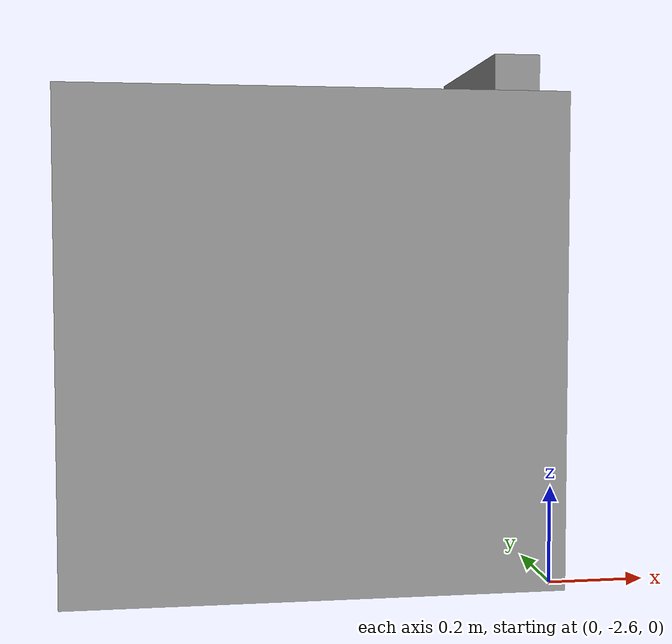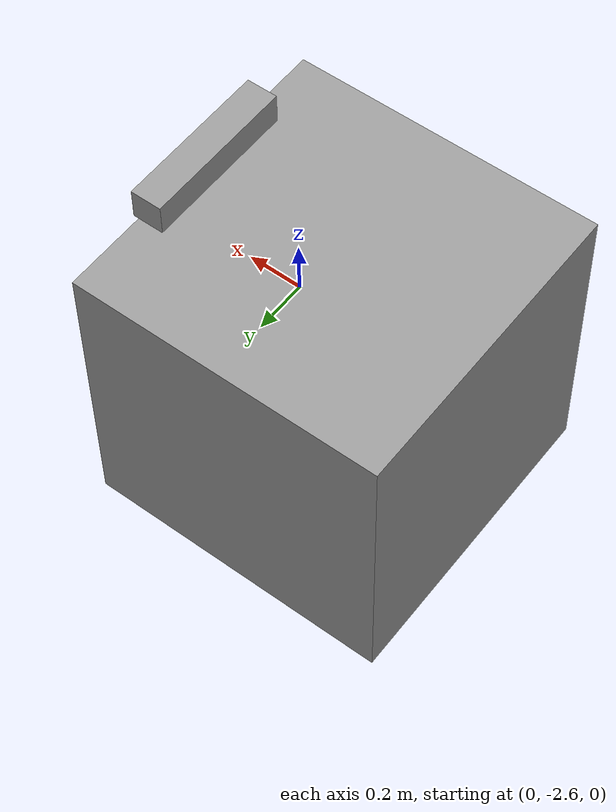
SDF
<?xml version='1.0'?>
<sdf version='1.7'>
  <model name='camera'>
    <link name='link_0'>
      <inertial>
        <mass>1</mass>
        <inertia>
          <ixx>0.166667</ixx>
          <ixy>0</ixy>
          <ixz>0</ixz>
          <iyy>0.166667</iyy>
          <iyz>0</iyz>
          <izz>0.166667</izz>
        </inertia>
      </inertial>
      <pose>-0.486136 -2.15842 0.5 0 -0 0</pose>
      <visual name='visual'>
        <pose>0 0 0 0 -0 0</pose>
        <geometry>
          <box>
            <size>1 1 1</size>
          </box>
        </geometry>
        <material>
          <lighting>1</lighting>
          <script>
            <uri>file://media/materials/scripts/gazebo.material</uri>
            <name>Gazebo/Grey</name>
          </script>
          <shader type='pixel'/>
          <emissive>0 0 0 1</emissive>
        </material>
        <transparency>0</transparency>
        <cast_shadows>1</cast_shadows>
      </visual>
      <collision name='collision'>
        <laser_retro>0</laser_retro>
        <max_contacts>10</max_contacts>
        <pose>0 0 0 0 -0 0</pose>
        <geometry>
          <box>
            <size>1 1 1</size>
          </box>
        </geometry>
        <surface>
          <friction>
            <ode>
              <mu>1</mu>
              <mu2>1</mu2>
              <fdir1>0 0 0</fdir1>
              <slip1>0</slip1>
              <slip2>0</slip2>
            </ode>
            <torsional>
              <coefficient>1</coefficient>
              <patch_radius>0</patch_radius>
              <surface_radius>0</surface_radius>
              <use_patch_radius>1</use_patch_radius>
              <ode>
                <slip>0</slip>
              </ode>
            </torsional>
          </friction>
          <bounce>
            <restitution_coefficient>0</restitution_coefficient>
            <threshold>1e+06</threshold>
          </bounce>
          <contact>
            <collide_without_contact>0</collide_without_contact>
            <collide_without_contact_bitmask>1</collide_without_contact_bitmask>
            <collide_bitmask>1</collide_bitmask>
            <ode>
              <soft_cfm>0</soft_cfm>
              <soft_erp>0.2</soft_erp>
              <kp>1e+13</kp>
              <kd>1</kd>
              <max_vel>0.01</max_vel>
              <min_depth>0</min_depth>
            </ode>
            <bullet>
              <split_impulse>1</split_impulse>
              <split_impulse_penetration_threshold>-0.01</split_impulse_penetration_threshold>
              <soft_cfm>0</soft_cfm>
              <soft_erp>0.2</soft_erp>
              <kp>1e+13</kp>
              <kd>1</kd>
            </bullet>
          </contact>
        </surface>
      </collision>
    </link>
    <link name='link_1'>
      <inertial>
        <mass>1</mass>
        <inertia>
          <ixx>0.166667</ixx>
          <ixy>0</ixy>
          <ixz>0</ixz>
          <iyy>0.166667</iyy>
          <iyz>0</iyz>
          <izz>0.166667</izz>
        </inertia>
        <pose>0 0 0 0 -0 0</pose>
      </inertial>
      <pose>-0.02509 -2.17453 1.06095 0 -0 0</pose>
      <gravity>1</gravity>
      <self_collide>0</self_collide>
      <kinematic>0</kinematic>
      <enable_wind>0</enable_wind>
      <visual name='visual'>
        <pose>0 0 0 0 -0 0</pose>
        <geometry>
          <box>
            <size>0.1 0.5 0.1</size>
          </box>
        </geometry>
        <material>
          <lighting>1</lighting>
          <script>
            <uri>file://media/materials/scripts/gazebo.material</uri>
            <name>Gazebo/Grey</name>
          </script>
          <shader type='pixel'>
            <normal_map>__default__</normal_map>
          </shader>
          <ambient>0.3 0.3 0.3 1</ambient>
          <diffuse>0.7 0.7 0.7 1</diffuse>
          <specular>0.01 0.01 0.01 1</specular>
          <emissive>0 0 0 1</emissive>
        </material>
        <transparency>0</transparency>
        <cast_shadows>1</cast_shadows>
      </visual>
      <collision name='collision'>
        <laser_retro>0</laser_retro>
        <max_contacts>10</max_contacts>
        <pose>0 0 0 0 -0 0</pose>
        <geometry>
          <box>
            <size>0.1 0.5 0.1</size>
          </box>
        </geometry>
        <surface>
          <friction>
            <ode>
              <mu>1</mu>
              <mu2>1</mu2>
              <fdir1>0 0 0</fdir1>
              <slip1>0</slip1>
              <slip2>0</slip2>
            </ode>
            <torsional>
              <coefficient>1</coefficient>
              <patch_radius>0</patch_radius>
              <surface_radius>0</surface_radius>
              <use_patch_radius>1</use_patch_radius>
              <ode>
                <slip>0</slip>
              </ode>
            </torsional>
          </friction>
          <bounce>
            <restitution_coefficient>0</restitution_coefficient>
            <threshold>1e+06</threshold>
          </bounce>
          <contact>
            <collide_without_contact>0</collide_without_contact>
            <collide_without_contact_bitmask>1</collide_without_contact_bitmask>
            <collide_bitmask>1</collide_bitmask>
            <ode>
              <soft_cfm>0</soft_cfm>
              <soft_erp>0.2</soft_erp>
              <kp>1e+13</kp>
              <kd>1</kd>
              <max_vel>0.01</max_vel>
              <min_depth>0</min_depth>
            </ode>
            <bullet>
              <split_impulse>1</split_impulse>
              <split_impulse_penetration_threshold>-0.01</split_impulse_penetration_threshold>
              <soft_cfm>0</soft_cfm>
              <soft_erp>0.2</soft_erp>
              <kp>1e+13</kp>
              <kd>1</kd>
            </bullet>
          </contact>
        </surface>
      </collision>

      <sensor type="camera" name="camera1">
        <always_on>1</always_on>
        <visualize>1</visualize>
        <update_rate>30.0</update_rate>
        <camera name="head">
          <horizontal_fov>1.3962634</horizontal_fov>
          <image>
            <width>800</width>
            <height>800</height>
            <format>R8G8B8</format>
          </image>
          <clip>
            <near>0.02</near>
            <far>300</far>
          </clip>
          <noise>
            <type>gaussian</type>
            <!-- Noise is sampled independently per pixel on each frame.
                 That pixel's noise value is added to each of its color
                 channels, which at that point lie in the range [0,1]. -->
            <mean>0.0</mean>
            <stddev>0.007</stddev>
          </noise>
        </camera>
        <plugin name="camera_controller" filename="libgazebo_ros_camera.so">
          <alwaysOn>true</alwaysOn>
          <updateRate>0.0</updateRate>
          <cameraName>rrbot/camera1</cameraName>
          <imageTopicName>image_raw</imageTopicName>
          <cameraInfoTopicName>camera_info</cameraInfoTopicName>
          <frameName>camera_link</frameName>
          <hackBaseline>0.07</hackBaseline>
          <distortionK1>0.0</distortionK1>
          <distortionK2>0.0</distortionK2>
          <distortionK3>0.0</distortionK3>
          <distortionT1>0.0</distortionT1>
          <distortionT2>0.0</distortionT2>
        </plugin>
      </sensor>
    </link>
    <joint name='link_0_JOINT_1' type='fixed'>
      <parent>link_0</parent>
      <child>link_1</child>
      <pose>0 0 0 0 -0 0</pose>
      <physics>
        <ode>
          <limit>
            <cfm>0</cfm>
            <erp>0.2</erp>
          </limit>
          <suspension>
            <cfm>0</cfm>
            <erp>0.2</erp>
          </suspension>
        </ode>
      </physics>
    </joint>
    <static>0</static>
    <allow_auto_disable>1</allow_auto_disable>
  </model>
</sdf>
